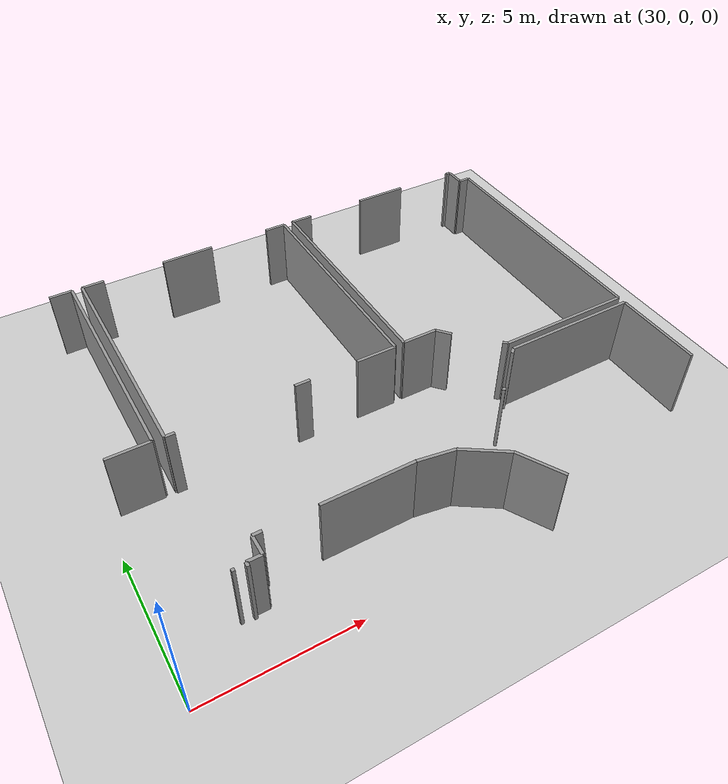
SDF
<sdf version="1.6">
 <world name="default">
  <model name="ground_plane">
   <static>1</static>
   <link name="link">
    <collision name="collision">
     <geometry><plane><normal>0 0 1</normal><size>100 100</size></plane></geometry>
     <surface><friction><ode><mu>100</mu><mu2>50</mu2></ode></friction></surface>
    </collision>
    <visual name="visual">
     <cast_shadows>0</cast_shadows>
     <geometry><plane><normal>0 0 1</normal><size>100 100</size></plane></geometry>
     <material>
      <script><uri>file://media/materials/scripts/gazebo.material</uri><name>Gazebo/Grey</name></script>
     </material>
    </visual>
   </link>
  </model>
  <model name="0510032262_A_40_1_104">
   <static>1</static>
   <link name="Wall_252">
    <collision name="Wall_252_Collision">
     <geometry><box><size>0.143160833836 0.1 2.5</size></box></geometry>
     <pose>0.0715804169179 0 1.25 0 0 0</pose>
    </collision>
    <visual name="Wall_252_Visual">
     <pose>0.0715804169179 0 1.25 0 0 0</pose>
     <geometry><box><size>0.143160833836 0.1 2.5</size></box></geometry>
     <material>
      <script><uri>file://media/materials/scripts/gazebo.material</uri><name>Gazebo/Grey</name></script>
      <ambient>1 1 1 1</ambient>
     </material>
    </visual>
    <pose>80.0288098487 -12.9644318939 0 0 0 1.57079632679</pose>
   </link>
   <link name="Wall_253">
    <collision name="Wall_253_Collision">
     <geometry><box><size>0.458038518895 0.1 2.5</size></box></geometry>
     <pose>0.229019259447 0 1.25 0 0 0</pose>
    </collision>
    <visual name="Wall_253_Visual">
     <pose>0.229019259447 0 1.25 0 0 0</pose>
     <geometry><box><size>0.458038518895 0.1 2.5</size></box></geometry>
     <material>
      <script><uri>file://media/materials/scripts/gazebo.material</uri><name>Gazebo/Grey</name></script>
      <ambient>1 1 1 1</ambient>
     </material>
    </visual>
    <pose>80.0288098487 -12.8212710601 0 0 0 0.0</pose>
   </link>
   <link name="Wall_254">
    <collision name="Wall_254_Collision">
     <geometry><box><size>0.648538883777 0.1 2.5</size></box></geometry>
     <pose>0.324269441888 0 1.25 0 0 0</pose>
    </collision>
    <visual name="Wall_254_Visual">
     <pose>0.324269441888 0 1.25 0 0 0</pose>
     <geometry><box><size>0.648538883777 0.1 2.5</size></box></geometry>
     <material>
      <script><uri>file://media/materials/scripts/gazebo.material</uri><name>Gazebo/Grey</name></script>
      <ambient>1 1 1 1</ambient>
     </material>
    </visual>
    <pose>80.4868483675 -12.8212710601 0 0 0 1.57079632679</pose>
   </link>
   <link name="Wall_255">
    <collision name="Wall_255_Collision">
     <geometry><box><size>0.286194752039 0.1 2.5</size></box></geometry>
     <pose>0.143097376019 0 1.25 0 0 0</pose>
    </collision>
    <visual name="Wall_255_Visual">
     <pose>0.143097376019 0 1.25 0 0 0</pose>
     <geometry><box><size>0.286194752039 0.1 2.5</size></box></geometry>
     <material>
      <script><uri>file://media/materials/scripts/gazebo.material</uri><name>Gazebo/Grey</name></script>
      <ambient>1 1 1 1</ambient>
     </material>
    </visual>
    <pose>80.4868483675 -12.1727321763 0 0 0 0.0</pose>
   </link>
   <link name="Wall_256">
    <collision name="Wall_256_Collision">
     <geometry><box><size>3.00421994479 0.1 2.5</size></box></geometry>
     <pose>1.5021099724 0 1.25 0 0 0</pose>
    </collision>
    <visual name="Wall_256_Visual">
     <pose>1.5021099724 0 1.25 0 0 0</pose>
     <geometry><box><size>3.00421994479 0.1 2.5</size></box></geometry>
     <material>
      <script><uri>file://media/materials/scripts/gazebo.material</uri><name>Gazebo/Grey</name></script>
      <ambient>1 1 1 1</ambient>
     </material>
    </visual>
    <pose>82.4226925152 -12.1727321763 0 0 0 0.0</pose>
   </link>
   <link name="Wall_257">
    <collision name="Wall_257_Collision">
     <geometry><box><size>1.22553575595 0.1 2.5</size></box></geometry>
     <pose>0.612767877973 0 1.25 0 0 0</pose>
    </collision>
    <visual name="Wall_257_Visual">
     <pose>0.612767877973 0 1.25 0 0 0</pose>
     <geometry><box><size>1.22553575595 0.1 2.5</size></box></geometry>
     <material>
      <script><uri>file://media/materials/scripts/gazebo.material</uri><name>Gazebo/Grey</name></script>
      <ambient>1 1 1 1</ambient>
     </material>
    </visual>
    <pose>85.4269124599 -12.1727321763 0 0 0 -0.159326079092</pose>
   </link>
   <link name="Wall_258">
    <collision name="Wall_258_Collision">
     <geometry><box><size>1.58301884604 0.1 2.5</size></box></geometry>
     <pose>0.791509423021 0 1.25 0 0 0</pose>
    </collision>
    <visual name="Wall_258_Visual">
     <pose>0.791509423021 0 1.25 0 0 0</pose>
     <geometry><box><size>1.58301884604 0.1 2.5</size></box></geometry>
     <material>
      <script><uri>file://media/materials/scripts/gazebo.material</uri><name>Gazebo/Grey</name></script>
      <ambient>1 1 1 1</ambient>
     </material>
    </visual>
    <pose>86.6369261034 -12.3671669258 0 0 0 -0.586579496797</pose>
   </link>
   <link name="Wall_259">
    <collision name="Wall_259_Collision">
     <geometry><box><size>1.57646996449 0.1 2.5</size></box></geometry>
     <pose>0.788234982244 0 1.25 0 0 0</pose>
    </collision>
    <visual name="Wall_259_Visual">
     <pose>0.788234982244 0 1.25 0 0 0</pose>
     <geometry><box><size>1.57646996449 0.1 2.5</size></box></geometry>
     <material>
      <script><uri>file://media/materials/scripts/gazebo.material</uri><name>Gazebo/Grey</name></script>
      <ambient>1 1 1 1</ambient>
     </material>
    </visual>
    <pose>87.9553256972 -13.2433924549 0 0 0 -1.06216520862</pose>
   </link>
   <link name="Wall_299">
    <collision name="Wall_299_Collision">
     <geometry><box><size>1.41028651204 0.1 2.5</size></box></geometry>
     <pose>0.705143256021 0 1.25 0 0 0</pose>
    </collision>
    <visual name="Wall_299_Visual">
     <pose>0.705143256021 0 1.25 0 0 0</pose>
     <geometry><box><size>1.41028651204 0.1 2.5</size></box></geometry>
     <material>
      <script><uri>file://media/materials/scripts/gazebo.material</uri><name>Gazebo/Grey</name></script>
      <ambient>1 1 1 1</ambient>
     </material>
    </visual>
    <pose>79.4102230542 -7.86090046641 0 0 0 3.14159265359</pose>
   </link>
   <link name="Wall_306">
    <collision name="Wall_306_Collision">
     <geometry><box><size>0.768601072437 0.1 2.5</size></box></geometry>
     <pose>0.384300536219 0 1.25 0 0 0</pose>
    </collision>
    <visual name="Wall_306_Visual">
     <pose>0.384300536219 0 1.25 0 0 0</pose>
     <geometry><box><size>0.768601072437 0.1 2.5</size></box></geometry>
     <material>
      <script><uri>file://media/materials/scripts/gazebo.material</uri><name>Gazebo/Grey</name></script>
      <ambient>1 1 1 1</ambient>
     </material>
    </visual>
    <pose>78.6334993813 -0.0454357965542 0 0 0 0.0</pose>
   </link>
   <link name="Wall_307">
    <collision name="Wall_307_Collision">
     <geometry><box><size>7.81546889076 0.1 2.5</size></box></geometry>
     <pose>3.90773444538 0 1.25 0 0 0</pose>
    </collision>
    <visual name="Wall_307_Visual">
     <pose>3.90773444538 0 1.25 0 0 0</pose>
     <geometry><box><size>7.81546889076 0.1 2.5</size></box></geometry>
     <material>
      <script><uri>file://media/materials/scripts/gazebo.material</uri><name>Gazebo/Grey</name></script>
      <ambient>1 1 1 1</ambient>
     </material>
    </visual>
    <pose>79.4021004537 -0.0454357965542 0 0 0 -1.5697570287</pose>
   </link>
   <link name="Wall_308">
    <collision name="Wall_308_Collision">
     <geometry><box><size>1.37233873782 0.1 2.5</size></box></geometry>
     <pose>0.686169368912 0 1.25 0 0 0</pose>
    </collision>
    <visual name="Wall_308_Visual">
     <pose>0.686169368912 0 1.25 0 0 0</pose>
     <geometry><box><size>1.37233873782 0.1 2.5</size></box></geometry>
     <material>
      <script><uri>file://media/materials/scripts/gazebo.material</uri><name>Gazebo/Grey</name></script>
      <ambient>1 1 1 1</ambient>
     </material>
    </visual>
    <pose>87.3900434686 -7.88260303963 0 0 0 3.14159265359</pose>
   </link>
   <link name="Wall_309">
    <collision name="Wall_309_Collision">
     <geometry><box><size>0.51743503506 0.1 2.5</size></box></geometry>
     <pose>0.25871751753 0 1.25 0 0 0</pose>
    </collision>
    <visual name="Wall_309_Visual">
     <pose>0.25871751753 0 1.25 0 0 0</pose>
     <geometry><box><size>0.51743503506 0.1 2.5</size></box></geometry>
     <material>
      <script><uri>file://media/materials/scripts/gazebo.material</uri><name>Gazebo/Grey</name></script>
      <ambient>1 1 1 1</ambient>
     </material>
    </visual>
    <pose>84.3837928737 -7.88260303963 0 0 0 3.14159265359</pose>
   </link>
   <link name="Wall_310">
    <collision name="Wall_310_Collision">
     <geometry><box><size>0.31716216645 0.1 2.5</size></box></geometry>
     <pose>0.158581083225 0 1.25 0 0 0</pose>
    </collision>
    <visual name="Wall_310_Visual">
     <pose>0.158581083225 0 1.25 0 0 0</pose>
     <geometry><box><size>0.31716216645 0.1 2.5</size></box></geometry>
     <material>
      <script><uri>file://media/materials/scripts/gazebo.material</uri><name>Gazebo/Grey</name></script>
      <ambient>1 1 1 1</ambient>
     </material>
    </visual>
    <pose>80.0694228512 -7.88260303963 0 0 0 3.14159265359</pose>
   </link>
   <link name="Wall_311">
    <collision name="Wall_311_Collision">
     <geometry><box><size>7.82764857061 0.1 2.5</size></box></geometry>
     <pose>3.91382428531 0 1.25 0 0 0</pose>
    </collision>
    <visual name="Wall_311_Visual">
     <pose>3.91382428531 0 1.25 0 0 0</pose>
     <geometry><box><size>7.82764857061 0.1 2.5</size></box></geometry>
     <material>
      <script><uri>file://media/materials/scripts/gazebo.material</uri><name>Gazebo/Grey</name></script>
      <ambient>1 1 1 1</ambient>
     </material>
    </visual>
    <pose>79.7522606847 -7.88260303963 0 0 0 1.57079632679</pose>
   </link>
   <link name="Wall_312">
    <collision name="Wall_312_Collision">
     <geometry><box><size>0.753625027763 0.1 2.5</size></box></geometry>
     <pose>0.376812513881 0 1.25 0 0 0</pose>
    </collision>
    <visual name="Wall_312_Visual">
     <pose>0.376812513881 0 1.25 0 0 0</pose>
     <geometry><box><size>0.753625027763 0.1 2.5</size></box></geometry>
     <material>
      <script><uri>file://media/materials/scripts/gazebo.material</uri><name>Gazebo/Grey</name></script>
      <ambient>1 1 1 1</ambient>
     </material>
    </visual>
    <pose>79.7522606847 -0.0549544690167 0 0 0 0.0</pose>
   </link>
   <link name="Wall_313">
    <collision name="Wall_313_Collision">
     <geometry><box><size>1.83697686963 0.1 2.5</size></box></geometry>
     <pose>0.918488434813 0 1.25 0 0 0</pose>
    </collision>
    <visual name="Wall_313_Visual">
     <pose>0.918488434813 0 1.25 0 0 0</pose>
     <geometry><box><size>1.83697686963 0.1 2.5</size></box></geometry>
     <material>
      <script><uri>file://media/materials/scripts/gazebo.material</uri><name>Gazebo/Grey</name></script>
      <ambient>1 1 1 1</ambient>
     </material>
    </visual>
    <pose>82.6387029222 -0.0549544690167 0 0 0 0.0</pose>
   </link>
   <link name="Wall_314">
    <collision name="Wall_314_Collision">
     <geometry><box><size>0.744233270933 0.1 2.5</size></box></geometry>
     <pose>0.372116635467 0 1.25 0 0 0</pose>
    </collision>
    <visual name="Wall_314_Visual">
     <pose>0.372116635467 0 1.25 0 0 0</pose>
     <geometry><box><size>0.744233270933 0.1 2.5</size></box></geometry>
     <material>
      <script><uri>file://media/materials/scripts/gazebo.material</uri><name>Gazebo/Grey</name></script>
      <ambient>1 1 1 1</ambient>
     </material>
    </visual>
    <pose>86.6275343465 -0.0549544690167 0 0 0 0.0</pose>
   </link>
   <link name="Wall_315">
    <collision name="Wall_315_Collision">
     <geometry><box><size>7.82766990565 0.1 2.5</size></box></geometry>
     <pose>3.91383495282 0 1.25 0 0 0</pose>
    </collision>
    <visual name="Wall_315_Visual">
     <pose>3.91383495282 0 1.25 0 0 0</pose>
     <geometry><box><size>7.82766990565 0.1 2.5</size></box></geometry>
     <material>
      <script><uri>file://media/materials/scripts/gazebo.material</uri><name>Gazebo/Grey</name></script>
      <ambient>1 1 1 1</ambient>
     </material>
    </visual>
    <pose>87.3717676175 -0.0549544690167 0 0 0 -1.56846154927</pose>
   </link>
   <link name="Wall_316">
    <collision name="Wall_316_Collision">
     <geometry><box><size>4.58736554875 0.1 2.5</size></box></geometry>
     <pose>2.29368277438 0 1.25 0 0 0</pose>
    </collision>
    <visual name="Wall_316_Visual">
     <pose>2.29368277438 0 1.25 0 0 0</pose>
     <geometry><box><size>4.58736554875 0.1 2.5</size></box></geometry>
     <material>
      <script><uri>file://media/materials/scripts/gazebo.material</uri><name>Gazebo/Grey</name></script>
      <ambient>1 1 1 1</ambient>
     </material>
    </visual>
    <pose>95.163499064 -9.51905320938 0 0 0 3.14159265359</pose>
   </link>
   <link name="Wall_317">
    <collision name="Wall_317_Collision">
     <geometry><box><size>0.177841591908 0.1 2.5</size></box></geometry>
     <pose>0.0889207959542 0 1.25 0 0 0</pose>
    </collision>
    <visual name="Wall_317_Visual">
     <pose>0.0889207959542 0 1.25 0 0 0</pose>
     <geometry><box><size>0.177841591908 0.1 2.5</size></box></geometry>
     <material>
      <script><uri>file://media/materials/scripts/gazebo.material</uri><name>Gazebo/Grey</name></script>
      <ambient>1 1 1 1</ambient>
     </material>
    </visual>
    <pose>90.5761335152 -9.51905320938 0 0 0 2.4081940594</pose>
   </link>
   <link name="Wall_318">
    <collision name="Wall_318_Collision">
     <geometry><box><size>0.54437494105 0.1 2.5</size></box></geometry>
     <pose>0.272187470525 0 1.25 0 0 0</pose>
    </collision>
    <visual name="Wall_318_Visual">
     <pose>0.272187470525 0 1.25 0 0 0</pose>
     <geometry><box><size>0.54437494105 0.1 2.5</size></box></geometry>
     <material>
      <script><uri>file://media/materials/scripts/gazebo.material</uri><name>Gazebo/Grey</name></script>
      <ambient>1 1 1 1</ambient>
     </material>
    </visual>
    <pose>89.2805787353 -8.26652282895 0 0 0 2.28144560792</pose>
   </link>
   <link name="Wall_319">
    <collision name="Wall_319_Collision">
     <geometry><box><size>1.18996097344 0.1 2.5</size></box></geometry>
     <pose>0.594980486721 0 1.25 0 0 0</pose>
    </collision>
    <visual name="Wall_319_Visual">
     <pose>0.594980486721 0 1.25 0 0 0</pose>
     <geometry><box><size>1.18996097344 0.1 2.5</size></box></geometry>
     <material>
      <script><uri>file://media/materials/scripts/gazebo.material</uri><name>Gazebo/Grey</name></script>
      <ambient>1 1 1 1</ambient>
     </material>
    </visual>
    <pose>88.9254687946 -7.85392010661 0 0 0 3.14159265359</pose>
   </link>
   <link name="Wall_320">
    <collision name="Wall_320_Collision">
     <geometry><box><size>7.8051845036 0.1 2.5</size></box></geometry>
     <pose>3.9025922518 0 1.25 0 0 0</pose>
    </collision>
    <visual name="Wall_320_Visual">
     <pose>3.9025922518 0 1.25 0 0 0</pose>
     <geometry><box><size>7.8051845036 0.1 2.5</size></box></geometry>
     <material>
      <script><uri>file://media/materials/scripts/gazebo.material</uri><name>Gazebo/Grey</name></script>
      <ambient>1 1 1 1</ambient>
     </material>
    </visual>
    <pose>87.7355078212 -7.85392010661 0 0 0 1.57079632679</pose>
   </link>
   <link name="Wall_321">
    <collision name="Wall_321_Collision">
     <geometry><box><size>0.757559412381 0.1 2.5</size></box></geometry>
     <pose>0.37877970619 0 1.25 0 0 0</pose>
    </collision>
    <visual name="Wall_321_Visual">
     <pose>0.37877970619 0 1.25 0 0 0</pose>
     <geometry><box><size>0.757559412381 0.1 2.5</size></box></geometry>
     <material>
      <script><uri>file://media/materials/scripts/gazebo.material</uri><name>Gazebo/Grey</name></script>
      <ambient>1 1 1 1</ambient>
     </material>
    </visual>
    <pose>87.7355078212 -0.0487356030079 0 0 0 0.0</pose>
   </link>
   <link name="Wall_322">
    <collision name="Wall_322_Collision">
     <geometry><box><size>1.84167274804 0.1 2.5</size></box></geometry>
     <pose>0.92083637402 0 1.25 0 0 0</pose>
    </collision>
    <visual name="Wall_322_Visual">
     <pose>0.92083637402 0 1.25 0 0 0</pose>
     <geometry><box><size>1.84167274804 0.1 2.5</size></box></geometry>
     <material>
      <script><uri>file://media/materials/scripts/gazebo.material</uri><name>Gazebo/Grey</name></script>
      <ambient>1 1 1 1</ambient>
     </material>
    </visual>
    <pose>90.6352762001 -0.0487356030079 0 0 0 0.0</pose>
   </link>
   <link name="Wall_323">
    <collision name="Wall_323_Collision">
     <geometry><box><size>0.171336104325 0.1 2.5</size></box></geometry>
     <pose>0.0856680521623 0 1.25 0 0 0</pose>
    </collision>
    <visual name="Wall_323_Visual">
     <pose>0.0856680521623 0 1.25 0 0 0</pose>
     <geometry><box><size>0.171336104325 0.1 2.5</size></box></geometry>
     <material>
      <script><uri>file://media/materials/scripts/gazebo.material</uri><name>Gazebo/Grey</name></script>
      <ambient>1 1 1 1</ambient>
     </material>
    </visual>
    <pose>94.6241076245 -0.0487356030079 0 0 0 0.0</pose>
   </link>
   <link name="Wall_324">
    <collision name="Wall_324_Collision">
     <geometry><box><size>0.730018720056 0.1 2.5</size></box></geometry>
     <pose>0.365009360028 0 1.25 0 0 0</pose>
    </collision>
    <visual name="Wall_324_Visual">
     <pose>0.365009360028 0 1.25 0 0 0</pose>
     <geometry><box><size>0.730018720056 0.1 2.5</size></box></geometry>
     <material>
      <script><uri>file://media/materials/scripts/gazebo.material</uri><name>Gazebo/Grey</name></script>
      <ambient>1 1 1 1</ambient>
     </material>
    </visual>
    <pose>94.7954437288 -0.0487356030079 0 0 0 -1.57079632679</pose>
   </link>
   <link name="Wall_325">
    <collision name="Wall_325_Collision">
     <geometry><box><size>0.395976774439 0.1 2.5</size></box></geometry>
     <pose>0.19798838722 0 1.25 0 0 0</pose>
    </collision>
    <visual name="Wall_325_Visual">
     <pose>0.19798838722 0 1.25 0 0 0</pose>
     <geometry><box><size>0.395976774439 0.1 2.5</size></box></geometry>
     <material>
      <script><uri>file://media/materials/scripts/gazebo.material</uri><name>Gazebo/Grey</name></script>
      <ambient>1 1 1 1</ambient>
     </material>
    </visual>
    <pose>94.7954437288 -0.778754323064 0 0 0 0.0</pose>
   </link>
   <link name="Wall_326">
    <collision name="Wall_326_Collision">
     <geometry><box><size>8.74034348461 0.1 2.5</size></box></geometry>
     <pose>4.3701717423 0 1.25 0 0 0</pose>
    </collision>
    <visual name="Wall_326_Visual">
     <pose>4.3701717423 0 1.25 0 0 0</pose>
     <geometry><box><size>8.74034348461 0.1 2.5</size></box></geometry>
     <material>
      <script><uri>file://media/materials/scripts/gazebo.material</uri><name>Gazebo/Grey</name></script>
      <ambient>1 1 1 1</ambient>
     </material>
    </visual>
    <pose>95.1914205032 -0.778754323064 0 0 0 -1.57399087936</pose>
   </link>
   <link name="Wall_329">
    <collision name="Wall_329_Collision">
     <geometry><box><size>0.117655788748 0.1 2.5</size></box></geometry>
     <pose>0.0588278943738 0 1.25 0 0 0</pose>
    </collision>
    <visual name="Wall_329_Visual">
     <pose>0.0588278943738 0 1.25 0 0 0</pose>
     <geometry><box><size>0.117655788748 0.1 2.5</size></box></geometry>
     <material>
      <script><uri>file://media/materials/scripts/gazebo.material</uri><name>Gazebo/Grey</name></script>
      <ambient>1 1 1 1</ambient>
     </material>
    </visual>
    <pose>89.1725735317 -11.151061332 0 0 0 0.745724335724</pose>
   </link>
   <link name="Wall_330">
    <collision name="Wall_330_Collision">
     <geometry><box><size>0.214126570411 0.1 2.5</size></box></geometry>
     <pose>0.107063285206 0 1.25 0 0 0</pose>
    </collision>
    <visual name="Wall_330_Visual">
     <pose>0.107063285206 0 1.25 0 0 0</pose>
     <geometry><box><size>0.214126570411 0.1 2.5</size></box></geometry>
     <material>
      <script><uri>file://media/materials/scripts/gazebo.material</uri><name>Gazebo/Grey</name></script>
      <ambient>1 1 1 1</ambient>
     </material>
    </visual>
    <pose>90.4061934829 -9.95526223943 0 0 0 0.785398163397</pose>
   </link>
   <link name="Wall_331">
    <collision name="Wall_331_Collision">
     <geometry><box><size>4.61224101279 0.1 2.5</size></box></geometry>
     <pose>2.30612050639 0 1.25 0 0 0</pose>
    </collision>
    <visual name="Wall_331_Visual">
     <pose>2.30612050639 0 1.25 0 0 0</pose>
     <geometry><box><size>4.61224101279 0.1 2.5</size></box></geometry>
     <material>
      <script><uri>file://media/materials/scripts/gazebo.material</uri><name>Gazebo/Grey</name></script>
      <ambient>1 1 1 1</ambient>
     </material>
    </visual>
    <pose>90.5576038329 -9.80385188946 0 0 0 0.0</pose>
   </link>
   <link name="Wall_332">
    <collision name="Wall_332_Collision">
     <geometry><box><size>3.02884157756 0.1 2.5</size></box></geometry>
     <pose>1.51442078878 0 1.25 0 0 0</pose>
    </collision>
    <visual name="Wall_332_Visual">
     <pose>1.51442078878 0 1.25 0 0 0</pose>
     <geometry><box><size>3.02884157756 0.1 2.5</size></box></geometry>
     <material>
      <script><uri>file://media/materials/scripts/gazebo.material</uri><name>Gazebo/Grey</name></script>
      <ambient>1 1 1 1</ambient>
     </material>
    </visual>
    <pose>95.1698448456 -9.80385188946 0 0 0 -1.57079632679</pose>
   </link>
   <link name="Wall_337">
    <collision name="Wall_337_Collision">
     <geometry><box><size>0.0989941936098 0.1 2.5</size></box></geometry>
     <pose>0.0494970968049 0 1.25 0 0 0</pose>
    </collision>
    <visual name="Wall_337_Visual">
     <pose>0.0494970968049 0 1.25 0 0 0</pose>
     <geometry><box><size>0.0989941936098 0.1 2.5</size></box></geometry>
     <material>
      <script><uri>file://media/materials/scripts/gazebo.material</uri><name>Gazebo/Grey</name></script>
      <ambient>1 1 1 1</ambient>
     </material>
    </visual>
    <pose>79.65504331 -12.8153060253 0 0 0 -1.57079632679</pose>
   </link>
   <pose>-47.55 14.4288907574 0 0 0 0</pose>
  </model>
 </world>
</sdf>
